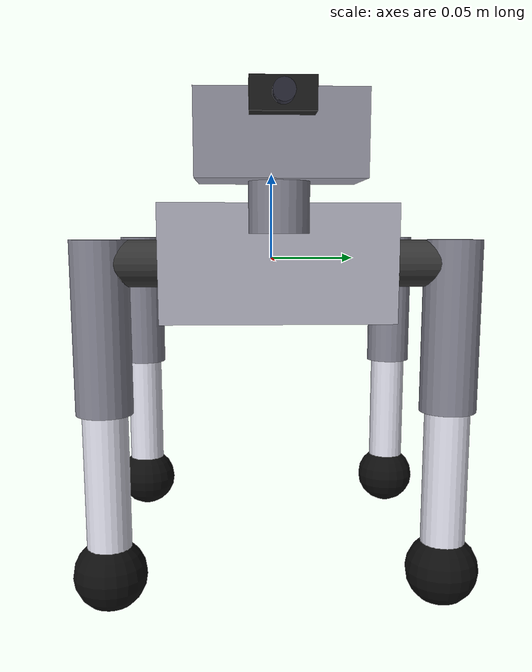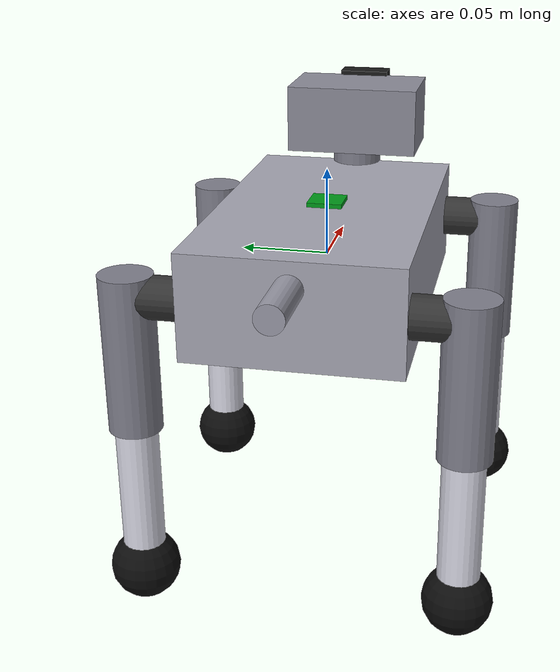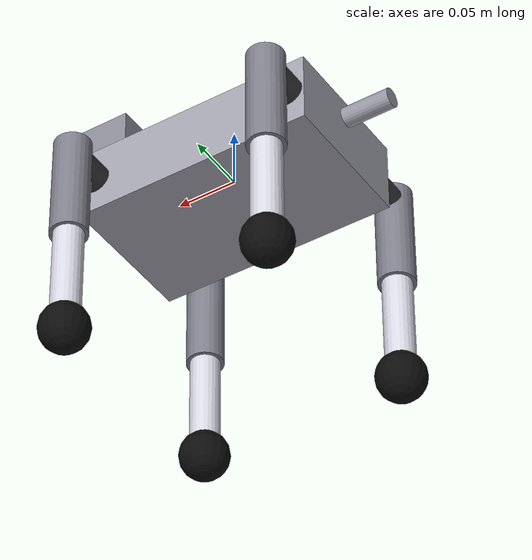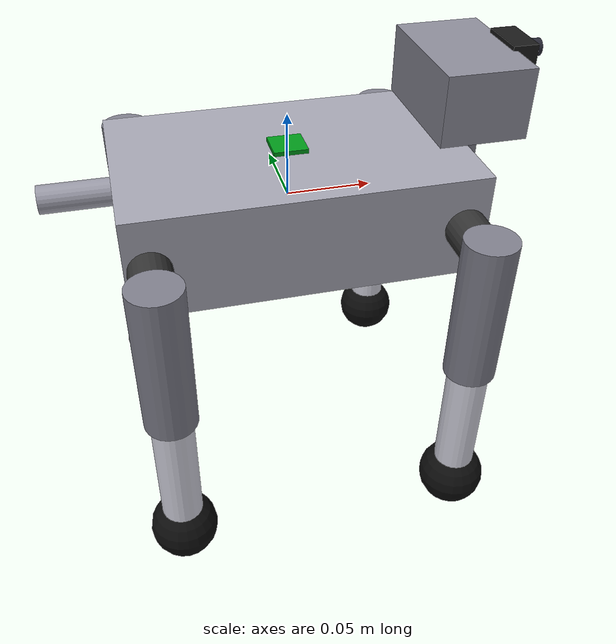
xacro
<?xml version="1.0"?>
<robot name="quadruped_robot" xmlns:xacro="http://www.ros.org/wiki/xacro">

  <!-- ==================== CONSTANTS ==================== -->

  <!-- Body dimensions -->
  <xacro:property name="body_length"    value="0.20"/>
  <xacro:property name="body_width"     value="0.12"/>
  <xacro:property name="body_height"    value="0.06"/>
  <xacro:property name="body_mass"      value="2.5"/>

  <!-- Head dimensions -->
  <xacro:property name="head_radius"    value="0.045"/>
  <xacro:property name="head_mass"      value="0.10"/>

  <!-- Tail dimensions -->
  <xacro:property name="tail_length"    value="0.04"/>
  <xacro:property name="tail_radius"    value="0.008"/>
  <xacro:property name="tail_mass"      value="0.05"/>

  <!-- Hip link -->
  <xacro:property name="hip_length"     value="0.045"/>
  <xacro:property name="hip_radius"     value="0.012"/>
  <xacro:property name="hip_mass"       value="0.15"/>

  <!-- Thigh link -->
  <xacro:property name="thigh_length"   value="0.09"/>
  <xacro:property name="thigh_radius"   value="0.011"/>
  <xacro:property name="thigh_mass"     value="0.20"/>

  <!-- Calf link -->
  <xacro:property name="calf_length"    value="0.09"/>
  <xacro:property name="calf_radius"    value="0.009"/>
  <xacro:property name="calf_mass"      value="0.12"/>

  <!-- Foot link -->
  <xacro:property name="foot_radius"    value="0.014"/>
  <xacro:property name="foot_mass"      value="0.04"/>

  <!-- Spawn height above ground -->
  <xacro:property name="spawn_height"   value="0.22"/>

  <!-- Leg offsets on body -->
  <xacro:property name="leg_x_offset" value="${body_length/2 - 0.3*hip_length}"/>
  <xacro:property name="leg_y_offset" value="${body_width/2 + 0.008}"/>
  <!-- ==================== INERTIA MACROS ==================== -->

  <xacro:macro name="inertia_box" params="m x y z">
    <inertial>
      <mass value="${m}"/>
      <inertia
        ixx="${m*(y*y+z*z)/12}" ixy="0" ixz="0"
        iyy="${m*(x*x+z*z)/12}" iyz="0"
        izz="${m*(x*x+y*y)/12}"/>
    </inertial>
  </xacro:macro>

  <xacro:macro name="inertia_cylinder" params="m r l">
    <inertial>
      <mass value="${m}"/>
      <inertia
        ixx="${m*(3*r*r+l*l)/12}" ixy="0" ixz="0"
        iyy="${m*(3*r*r+l*l)/12}" iyz="0"
        izz="${m*r*r/2}"/>
    </inertial>
  </xacro:macro>

  <xacro:macro name="inertia_sphere" params="m r">
    <inertial>
      <mass value="${m}"/>
      <inertia
        ixx="${2*m*r*r/5}" ixy="0" ixz="0"
        iyy="${2*m*r*r/5}" iyz="0"
        izz="${2*m*r*r/5}"/>
    </inertial>
  </xacro:macro>

  <!-- ==================== LEG MACRO ==================== -->
  <!--
    prefix  : fl / fr / rl / rr
    x_sign  :  1 = front,  -1 = rear
    y_sign  :  1 = left,   -1 = right
  -->
  <xacro:macro name="leg" params="prefix x_sign y_sign">

    <!-- HIP LINK -->
    <link name="${prefix}_hip">
    <xacro:inertia_cylinder m="${hip_mass}" r="${hip_radius}" l="${hip_length}"/>
      <visual>
        <origin xyz="0 0 0" rpy="${pi/2} 0 0"/>
        <geometry>
          <cylinder radius="${hip_radius}" length="${hip_length}"/>
        </geometry>
        <material name="dark_gray">
          <color rgba="0.2 0.2 0.2 1"/>
        </material>
      </visual>
      <collision>
        <origin xyz="0 0 0" rpy="${pi/2} 0 0"/>
        <geometry>
          <cylinder radius="${hip_radius}" length="${hip_length}"/>
        </geometry>
      </collision>
    </link>

    <!-- hip joint: abduction/adduction (rotation around Z-axis of body) -->
    <joint name="${prefix}_hip_joint" type="revolute">
      <parent link="base_link"/>
      <child  link="${prefix}_hip"/>
      <origin xyz="${x_sign*leg_x_offset} ${y_sign*leg_y_offset} 0" rpy="0 0 0"/>
      <axis xyz="0 1 0"/>
      <limit lower="-0.4" upper="0.4" effort="30" velocity="3.0"/>
      <dynamics damping="0.5" friction="0.2"/>
    </joint>

    <gazebo reference="${prefix}_hip">
      <material>Gazebo/DarkGray</material>
      <mu1>0.9</mu1>
      <mu2>0.9</mu2>
    </gazebo>

    <!-- THIGH LINK -->
    <link name="${prefix}_thigh">
     <xacro:inertia_cylinder m="${thigh_mass}" r="0.02" l="${thigh_length}"/>
      <visual>
        <origin xyz="0 0 ${-thigh_length/2 + hip_radius}" rpy="0 0 0"/>
        <geometry>
          <cylinder radius="0.015" length="${thigh_length}"/>
        </geometry>
        <material name="dark_metal">
          <color rgba="0.5 0.5 0.55 1"/>
        </material>
      </visual>
      <collision>
        <origin xyz="0 0 ${-thigh_length/2 + hip_radius}" rpy="0 0 0"/>
        <geometry>
         <cylinder radius="0.015" length="${thigh_length}"/>
        </geometry>
      </collision>
    </link>

    <!-- thigh joint: forward/backward swing -->
    <joint name="${prefix}_thigh_joint" type="revolute">
      <parent link="${prefix}_hip"/>
      <child  link="${prefix}_thigh"/>
      <origin xyz="0 ${y_sign*hip_length/2} 0" rpy="0 0 0"/>
      <axis xyz="0 1 0"/>
      <limit lower="-0.6" upper="0.3" effort="40" velocity="3.0"/>
      <dynamics damping="0.5" friction="0.2"/>
    </joint>

    <gazebo reference="${prefix}_thigh">
      <material>Gazebo/Orange</material>
      <mu1>0.8</mu1>
      <mu2>0.8</mu2>
    </gazebo>

    <!-- CALF LINK -->
    <link name="${prefix}_calf">
      <xacro:inertia_cylinder m="${calf_mass}" r="0.015" l="${calf_length}"/>
      <visual>
        <origin xyz="0 0 ${-calf_length/2}" rpy="0 0 0"/>
        <geometry>
           <cylinder radius="0.012" length="${calf_length}"/>
        </geometry>
        <material name="silver">
          <color rgba="0.85 0.85 0.9 1"/>
        </material>
      </visual>
      <collision>
        <origin xyz="0 0 ${-calf_length/2}" rpy="0 0 0"/>
        <geometry>
           <cylinder radius="0.012" length="${calf_length}"/>
        </geometry>
      </collision>
    </link>

    <!-- knee joint: bending -->
    <joint name="${prefix}_knee_joint" type="revolute">
      <parent link="${prefix}_thigh"/>
      <child  link="${prefix}_calf"/>
      <origin xyz="0 0 ${-(thigh_length - thigh_radius) + 0.002}" rpy="0 0 0"/>
      <axis xyz="0 1 0"/>
      <limit lower="-1.0" upper="0.2" effort="40" velocity="3.0"/>
      <dynamics damping="0.5" friction="0.2"/>
    </joint>

    <gazebo reference="${prefix}_calf">
      <material>Gazebo/Gray</material>
      <mu1>0.8</mu1>
      <mu2>0.8</mu2>
    </gazebo>

    <!-- FOOT LINK -->
    <link name="${prefix}_foot">
      <xacro:inertia_sphere m="${foot_mass}" r="${foot_radius}"/>
      <visual>
        <origin xyz="0 0 0" rpy="0 0 0"/>
        <geometry>
          <sphere radius="0.02"/>
        </geometry>
        <material name="black">
          <color rgba="0.05 0.05 0.05 1"/>
        </material>
      </visual>
      <collision>
        <origin xyz="0 0 0" rpy="0 0 0"/>
        <geometry>
          <sphere radius="0.02"/>
        </geometry>
      </collision>
    </link>

    <!-- foot joint: fixed to calf (foot sphere at bottom) -->
    <joint name="${prefix}_foot_joint" type="fixed">
      <parent link="${prefix}_calf"/>
      <child  link="${prefix}_foot"/>
      <origin xyz="0 0 ${-calf_length}" rpy="0 0 0"/>
    </joint>

    <gazebo reference="${prefix}_foot">
      <material>Gazebo/Black</material>
      <!-- High friction rubber foot -->
      <mu1>1.5</mu1>
      <mu2>1.5</mu2>
      <kp>1000000.0</kp>
      <kd>100.0</kd>
      <minDepth>0.001</minDepth>
      <maxVel>1.0</maxVel>
    </gazebo>

  </xacro:macro>

  <!-- ==================== BASE LINK ==================== -->
  <link name="base_link">
    <xacro:inertia_box m="${body_mass}" x="${body_length}" y="${body_width}" z="${body_height}"/>
    <visual>
      <origin xyz="0 0 0" rpy="0 0 0"/>
    <geometry>
        <box size="${body_length} ${body_width} ${body_height}"/>
      </geometry>
      <material name="body_gray">
        <color rgba="0.65 0.65 0.7 1"/>
      </material>
    </visual>
    <collision>
      <origin xyz="0 0 0" rpy="0 0 0"/>
      <geometry>
        <box size="${body_length} ${body_width} ${body_height}"/>
      </geometry>
    </collision>
  </link>

    <link name="neck_link">
   <inertial>
  <mass value="0.05"/>
  <inertia ixx="0.0001" iyy="0.0001" izz="0.0001"
           ixy="0" ixz="0" iyz="0"/>
  </inertial>
  <visual>
    <origin xyz="0 0 0" rpy="0 0 0"/>
    <geometry>
      <cylinder radius="0.015" length="0.03"/>
    </geometry>
    <material name="neck_metal">
  <color rgba="0.5 0.5 0.55 1"/>
   </material>
  </visual>

  <collision>
    <origin xyz="0 0 0" rpy="0 0 0"/>
    <geometry>
      <cylinder radius="0.015" length="0.03"/>
    </geometry>
  </collision>
  </link>

   <joint name="neck_joint" type="fixed">
  <parent link="base_link"/>
  <child link="neck_link"/>
  <origin xyz="${body_length/2} 0 ${body_height/2}" rpy="0 0 0"/>
  </joint>

  <gazebo reference="base_link">
    <material>Gazebo/Blue</material>
    <mu1>0.6</mu1>
    <mu2>0.6</mu2>
  </gazebo>

  <!-- ==================== HEAD LINK ==================== -->
  <link name="head_link">
  <visual>
  <origin xyz="0 0 0" rpy="0 0 0"/>
  <geometry>
    <box size="0.05 0.08 0.04"/>
  </geometry>
  <material name="head_gray">
    <color rgba="0.55 0.55 0.6 1"/>
  </material>
</visual>
  <collision>
    <origin xyz="0 0 0" rpy="0 0 0"/>
    <geometry>
      <box size="0.05 0.08 0.04"/>
    </geometry>
  </collision>
 </link>

  <joint name="head_joint" type="revolute">
    <parent link="neck_link"/>
    <child  link="head_link"/>
  <origin xyz="0 0 0.03" rpy="0 0 0"/>
  <axis xyz="0 0 1"/>
  <limit lower="-1.57" upper="1.57" effort="10" velocity="1.0"/>
  </joint>

  <gazebo reference="head_link">
    <material>Gazebo/Blue</material>
  </gazebo>

  <!-- Camera visual marker inside head -->
  <link name="camera_link">
    <inertial>
      <mass value="0.01"/>
      <inertia ixx="0.0001" ixy="0" ixz="0"
               iyy="0.0001" iyz="0"
               izz="0.0001"/>
    </inertial>
   <visual>
  <!-- Camera body -->
  <origin xyz="0 0 0" rpy="0 0 0"/>
  <geometry>
    <box size="0.015 0.03 0.015"/>
  </geometry>
  <material name="camera_black">
    <color rgba="0.1 0.1 0.1 1"/>
  </material>
</visual>

<!-- Lens -->
<visual>
  <origin xyz="0.012 0 0" rpy="0 1.57 0"/>
  <geometry>
    <cylinder length="0.008" radius="0.005"/>
  </geometry>
  <material name="lens_glass">
    <color rgba="0.15 0.15 0.2 1"/>
  </material>
</visual>
    <collision>
      <origin xyz="0 0 0" rpy="0 0 0"/>
      <geometry>
        <box size="0.05 0.05 0.05"/>
      </geometry>
    </collision>
  </link>

  <joint name="camera_joint" type="fixed">
    <parent link="head_link"/>
    <child  link="camera_link"/>
  <origin xyz="0.03 0 0.015" rpy="0 0 0"/>
  </joint>

  <!-- ==================== TAIL LINK ==================== -->
  <link name="tail_link">
    <xacro:inertia_cylinder m="${tail_mass}" r="${tail_radius}" l="${tail_length}"/>
    <visual>
      <origin xyz="${-tail_length/2} 0 0" rpy="0 ${pi/2} 0"/>
      <geometry>
        <cylinder radius="${tail_radius}" length="${tail_length}"/>
      </geometry>
      <material name="tail_color">
        <color rgba="0.6 0.6 0.65 1"/>
      </material>
    </visual>
    <collision>
      <origin xyz="${-tail_length/2} 0 0" rpy="0 ${pi/2} 0"/>
      <geometry>
        <cylinder radius="${tail_radius}" length="${tail_length}"/>
      </geometry>
    </collision>
  </link>

  <joint name="tail_joint" type="revolute">
    <parent link="base_link"/>
    <child  link="tail_link"/>
    <origin xyz="${-body_length/2} 0 ${body_height/4}" rpy="0.3 0 0"/>
    <axis xyz="0 0 1"/>
    <limit lower="-0.5" upper="0.5" effort="5" velocity="2.0"/>
    <dynamics damping="0.3" friction="0.1"/>
  </joint>

  <gazebo reference="tail_link">
    <material>Gazebo/Blue</material>
  </gazebo>

  <!-- ==================== IMU SENSOR ==================== -->
  <link name="imu_link">
    <inertial>
      <mass value="0.005"/>
      <inertia ixx="0.00001" ixy="0" ixz="0"
               iyy="0.00001" iyz="0"
               izz="0.00001"/>
    </inertial>
    <visual>
      <geometry>
        <box size="0.02 0.02 0.005"/>
      </geometry>
      <material name="green_pcb">
        <color rgba="0.0 0.6 0.1 1"/>
      </material>
    </visual>
  </link>

  <joint name="imu_joint" type="fixed">
    <parent link="base_link"/>
    <child  link="imu_link"/>
    <origin xyz="0 0 ${body_height/2}" rpy="0 0 0"/>
  </joint>

  <!-- ==================== INSTANTIATE LEGS ==================== -->
  <xacro:leg prefix="front_left"  x_sign=" 1" y_sign=" 1"/>
  <xacro:leg prefix="front_right" x_sign=" 1" y_sign="-1"/>
  <xacro:leg prefix="rear_left"   x_sign="-1" y_sign=" 1"/>
  <xacro:leg prefix="rear_right"  x_sign="-1" y_sign="-1"/>

  <!-- ==================== GAZEBO PLUGINS ==================== -->

  <!-- IMU Plugin -->
  <gazebo reference="imu_link">
    <sensor name="imu_sensor" type="imu">
      <always_on>true</always_on>
      <update_rate>100</update_rate>
      <visualize>false</visualize>
      <topic>/imu/data</topic>
      <imu>
        <angular_velocity>
          <x><noise type="gaussian"><mean>0.0</mean><stddev>0.005</stddev></noise></x>
          <y><noise type="gaussian"><mean>0.0</mean><stddev>0.005</stddev></noise></y>
          <z><noise type="gaussian"><mean>0.0</mean><stddev>0.005</stddev></noise></z>
        </angular_velocity>
        <linear_acceleration>
          <x><noise type="gaussian"><mean>0.0</mean><stddev>0.01</stddev></noise></x>
          <y><noise type="gaussian"><mean>0.0</mean><stddev>0.01</stddev></noise></y>
          <z><noise type="gaussian"><mean>0.0</mean><stddev>0.01</stddev></noise></z>
        </linear_acceleration>
      </imu>
    </sensor>
  </gazebo>

  <!-- Camera Plugin -->
  <gazebo reference="camera_link">
    <sensor name="head_camera" type="camera">
      <always_on>true</always_on>
      <update_rate>30</update_rate>
      <visualize>true</visualize>
      <camera name="head_camera">
        <horizontal_fov>1.3962634</horizontal_fov>
        <image>
          <width>640</width>
          <height>480</height>
          <format>R8G8B8</format>
        </image>
        <clip>
          <near>0.02</near>
          <far>300</far>
        </clip>
        <noise>
          <type>gaussian</type>
          <mean>0.0</mean>
          <stddev>0.007</stddev>
        </noise>
      </camera>
    </sensor>
  </gazebo>

<gazebo>
   <plugin filename="gz_ros2_control-system" name="gz_ros2_control::GazeboSimROS2ControlPlugin">
   <parameters>/home/krish-pc/ros2_ws/src/quadruped_robot/config/controllers.yaml</parameters>
  </plugin>
</gazebo>

<ros2_control name="QuadrupedSystem" type="system">
  <hardware>
    <plugin>gz_ros2_control/GazeboSimSystem</plugin>
  </hardware>

  <!-- FRONT LEFT -->
  <joint name="front_left_hip_joint">
    <command_interface name="position"/>
    <state_interface name="position"/>
  </joint>

  <joint name="front_left_thigh_joint">
    <command_interface name="position"/>
    <state_interface name="position"/>
  </joint>

  <joint name="front_left_knee_joint">
    <command_interface name="position"/>
    <state_interface name="position"/>
  </joint>

  <!-- FRONT RIGHT -->
  <joint name="front_right_hip_joint">
    <command_interface name="position"/>
    <state_interface name="position"/>
  </joint>

  <joint name="front_right_thigh_joint">
    <command_interface name="position"/>
    <state_interface name="position"/>
  </joint>

  <joint name="front_right_knee_joint">
    <command_interface name="position"/>
    <state_interface name="position"/>
  </joint>

  <!-- REAR LEFT -->
  <joint name="rear_left_hip_joint">
    <command_interface name="position"/>
    <state_interface name="position"/>
  </joint>

  <joint name="rear_left_thigh_joint">
    <command_interface name="position"/>
    <state_interface name="position"/>
  </joint>

  <joint name="rear_left_knee_joint">
    <command_interface name="position"/>
    <state_interface name="position"/>
  </joint>

  <!-- REAR RIGHT -->
  <joint name="rear_right_hip_joint">
    <command_interface name="position"/>
    <state_interface name="position"/>
  </joint>

  <joint name="rear_right_thigh_joint">
    <command_interface name="position"/>
    <state_interface name="position"/>
  </joint>

  <joint name="rear_right_knee_joint">
    <command_interface name="position"/>
    <state_interface name="position"/>
  </joint>

</ros2_control>

</robot>
